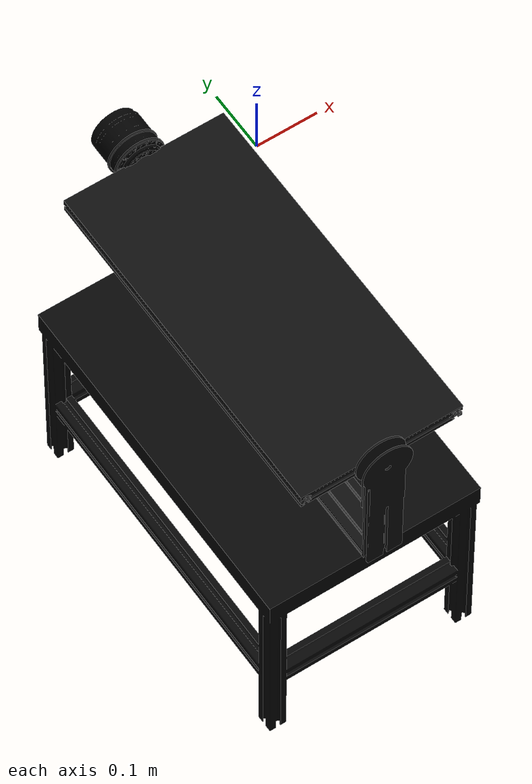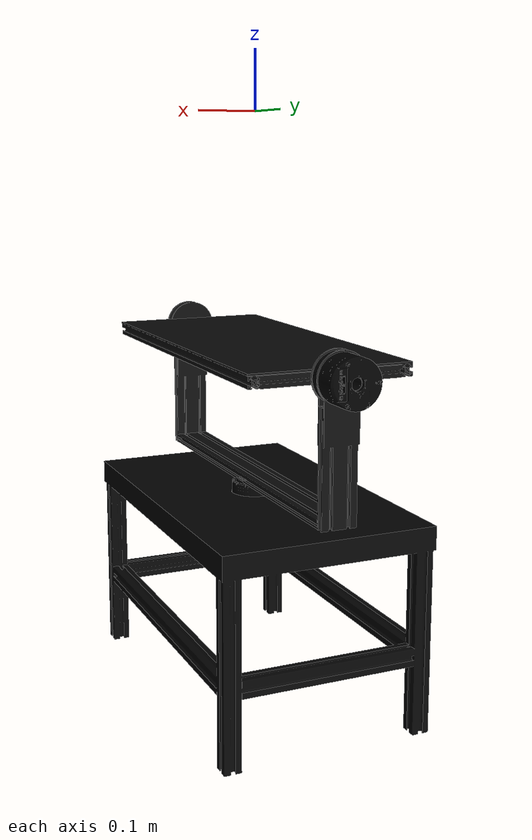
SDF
<?xml version="1.0" ?>
<sdf version="1.8">
        <physics name="1ms" type="ode">
            <max_step_size>0.001</max_step_size>
            <real_time_factor>1.0</real_time_factor>
        </physics>

        <plugin filename="gz-sim-physics-system" name="gz::sim::systems::Physics"/>
        <plugin filename="gz-sim-user-commands-system" name="gz::sim::systems::UserCommands"/>
        <plugin filename="gz-sim-scene-broadcaster-system" name="gz::sim::systems::SceneBroadcaster"/>
        <plugin filename="gz-sim-imu-system" name="gz::sim::systems::Imu"/>
        <plugin filename="gz-sim-sensors-system" name="gz::sim::systems::Sensors">
            <render_engine>ogre2</render_engine>
        </plugin>
        <plugin filename="gz-sim-contact-system" name="gz::sim::systems::Contact"/>

        <model name='pan_tilt_system' canonical_link='base'>

            <link name='base'>
                <pose relative_to='__model__'>0 0 -1.0 0 0 1.5708</pose>
                <inertial>
                    <mass>50</mass>
                    <inertia>
                        <ixx>0.729165</ixx>
                        <ixy>0</ixy>
                        <ixz>0</ixz>
                        <iyy>0.729165</iyy>
                        <iyz>0</iyz>
                        <izz>0.625</izz>
                    </inertia>
                </inertial>
                <visual name='visual'>
                    <pose>0 0 0 0 0 0</pose>
                    <geometry>
                        <mesh>
                            <uri>file:///home/kimsh/ros2_ws/src/pan_tilt/sdf/meshes/base.dae</uri>
                            <scale>0.01 0.01 0.01</scale>
                        </mesh>
                    </geometry>
                </visual>
                <collision name="collision">
                    <geometry>
                        <mesh>
                            <uri>file:///home/kimsh/ros2_ws/src/pan_tilt/sdf/meshes/base.dae</uri>
                            <scale>0.01 0.01 0.01</scale>
                        </mesh>
                    </geometry>
                </collision>
            </link>

            <link name='pan_motor'>
                <pose relative_to='base'>0 0 0.34 1.5708 0 0</pose>
                <inertial>
                    <mass>5</mass>
                    <inertia>
                        <ixx>0.145833</ixx>
                        <ixy>0</ixy>
                        <ixz>0</ixz>
                        <iyy>0.145833</iyy>
                        <iyz>0</iyz>
                        <izz>0.125</izz>
                    </inertia>
                </inertial>
                <visual name='visual'>
                    <pose>0 0 0 0 0 0</pose>
                    <geometry>
                        <mesh>
                            <uri>file:///home/kimsh/ros2_ws/src/pan_tilt/sdf/meshes/ym080.dae</uri>
                            <scale>0.01 0.01 0.01</scale>
                        </mesh>
                    </geometry>
                </visual>
                <collision name="collision">
                    <geometry>
                        <mesh>
                            <uri>file:///home/kimsh/ros2_ws/src/pan_tilt/sdf/meshes/ym080.dae</uri>
                            <scale>0.01 0.01 0.01</scale>
                        </mesh>
                    </geometry>
                </collision>
            </link>

            <link name='pan_support'>
                <pose relative_to='pan_motor'>0.31 0.035 0 -1.5708 -1.5708 0</pose>
                <inertial>
                    <mass>5</mass>
                    <inertia>
                        <ixx>0.145833</ixx>
                        <ixy>0</ixy>
                        <ixz>0</ixz>
                        <iyy>0.145833</iyy>
                        <iyz>0</iyz>
                        <izz>0.125</izz>
                    </inertia>
                </inertial>
                <visual name='visual'>
                    <pose>0 0 0 0 0 0</pose>
                    <geometry>
                        <mesh>
                            <uri>file:///home/kimsh/ros2_ws/src/pan_tilt/sdf/meshes/pan_support.dae</uri>
                            <scale>0.01 0.01 0.01</scale>
                        </mesh>
                    </geometry>
                </visual>
                <collision name="collision">
                    <geometry>
                        <mesh>
                            <uri>file:///home/kimsh/ros2_ws/src/pan_tilt/sdf/meshes/pan_support.dae</uri>
                            <scale>0.01 0.01 0.01</scale>
                        </mesh>
                    </geometry>
                </collision>
            </link>

            <link name='tilt_motor'>
                <pose relative_to='pan_support'>0 0.02 0.232 3.14159 0 0</pose>
                <inertial>
                    <mass>5</mass>
                    <inertia>
                        <ixx>0.145833</ixx>
                        <ixy>0</ixy>
                        <ixz>0</ixz>
                        <iyy>0.145833</iyy>
                        <iyz>0</iyz>
                        <izz>0.125</izz>
                    </inertia>
                </inertial>
                <visual name='visual'>
                    <pose>0 0 0 0 0 0</pose>
                    <geometry>
                        <mesh>
                            <uri>file:///home/kimsh/ros2_ws/src/pan_tilt/sdf/meshes/ym080.dae</uri>
                            <scale>0.01 0.01 0.01</scale>
                        </mesh>
                    </geometry>
                </visual>
                <collision name="collision">
                    <geometry>
                        <mesh>
                            <uri>file:///home/kimsh/ros2_ws/src/pan_tilt/sdf/meshes/ym080.dae</uri>
                            <scale>0.01 0.01 0.01</scale>
                        </mesh>
                    </geometry>
                </collision>
            </link>

            <link name='plate'>
                <pose relative_to='tilt_motor'>0 0.34 0.01 3.14159 0 1.5708</pose>
                <inertial>
                    <mass>1</mass>
                    <inertia>
                        <ixx>0.145833</ixx>
                        <ixy>0</ixy>
                        <ixz>0</ixz>
                        <iyy>0.145833</iyy>
                        <iyz>0</iyz>
                        <izz>0.125</izz>
                    </inertia>
                </inertial>
                <visual name='visual'>
                    <pose>0 0 0 0 0 0</pose>
                    <geometry>
                        <mesh>
                            <uri>file:///home/kimsh/ros2_ws/src/pan_tilt/sdf/meshes/plate.dae</uri>
                            <scale>0.01 0.01 0.01</scale>
                        </mesh>
                    </geometry>
                </visual>
                <collision name="collision">
                    <geometry>
                        <mesh>
                            <uri>file:///home/kimsh/ros2_ws/src/pan_tilt/sdf/meshes/plate.dae</uri>
                            <scale>0.01 0.01 0.01</scale>
                        </mesh>
                    </geometry>
                </collision>
            </link>

            <joint name='base_joint' type='revolute'>
                <parent>base</parent>
                <child>pan_motor</child>
                <axis>
                    <xyz>0 1 0</xyz>
                    <limit>
                        <lower>-1e16</lower>
                        <upper>1e16</upper>
                        <effort>5e6</effort>
                    </limit>
                </axis>
            </joint>

            <joint name='pan_motor_joint' type='fixed'>
                <parent>pan_motor</parent>
                <child>pan_support</child>
            </joint>

            <joint name='pan_support_joint' type='fixed'>
                <parent>pan_support</parent>
                <child>tilt_motor</child>
            </joint>

            <joint name='tilt_motor_joint' type='revolute'>
                <parent>pan_support</parent>
                <child>plate</child>
                <axis>
                    <xyz>1 0 0</xyz>
                    <limit>
                        <lower>-1e16</lower>
                        <upper>1e16</upper>
                        <effort>5e6</effort>
                    </limit>
                </axis>
            </joint>

            <plugin filename="gz-sim-joint-controller-system" name="gz::sim::systems::JointController">
                <joint_name>base_joint</joint_name>
                <topic>/pan/command</topic>
                <velocity_pid>
                    <p>1.0</p>
                    <i>0.0</i>
                    <d>0.0</d>
                    <reset_on_setpoint_change>true</reset_on_setpoint_change>
                </velocity_pid>
            </plugin>

            <plugin filename="gz-sim-joint-controller-system" name="gz::sim::systems::JointController">
                <joint_name>tilt_motor_joint</joint_name>
                <topic>/tilt/command</topic>
                <velocity_pid>
                    <p>1.0</p>
                    <i>0.0</i>
                    <d>0.0</d>
                    <reset_on_setpoint_change>true</reset_on_setpoint_change>
                </velocity_pid>
            </plugin>
        </model>

        <plugin filename="gz-sim-triggered-publisher-system"
                name="gz::sim::systems::TriggeredPublisher">
            <input type="gz.msgs.Int32" topic="/keyboard/keypress">
                <match field="data">16777235</match>
            </input>
            <output type="gz.msgs.Double" topic="/tilt/command">
                data: 0.3
            </output>
        </plugin>

        <plugin filename="gz-sim-triggered-publisher-system"
                 name="gz::sim::systems::TriggeredPublisher">
            <input type="gz.msgs.Int32" topic="/keyboard/keypress">
                <match field="data">16777237</match>
            </input>
            <output type="gz.msgs.Double" topic="/tilt/command">
                data: -0.3
            </output>
        </plugin>

        <plugin filename="gz-sim-triggered-publisher-system"
                name="gz::sim::systems::TriggeredPublisher">
            <input type="gz.msgs.Int32" topic="/keyboard/keypress">
                <match field="data">16777234</match>
            </input>
            <output type="gz.msgs.Double" topic="/pan/command">
                data: 0.3
            </output>
        </plugin>

        <plugin filename="gz-sim-triggered-publisher-system"
                name="gz::sim::systems::TriggeredPublisher">
            <input type="gz.msgs.Int32" topic="/keyboard/keypress">
                <match field="data">16777236</match>
            </input>
            <output type="gz.msgs.Double" topic="/pan/command">
                data: -0.3
            </output>
        </plugin>
</sdf>
